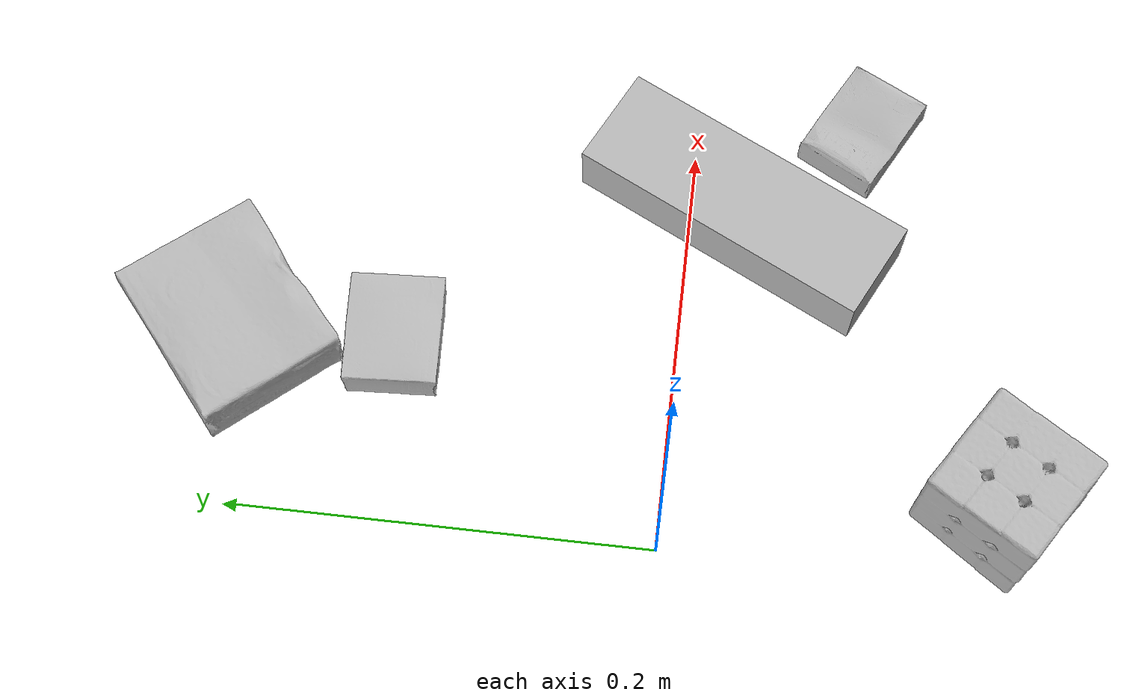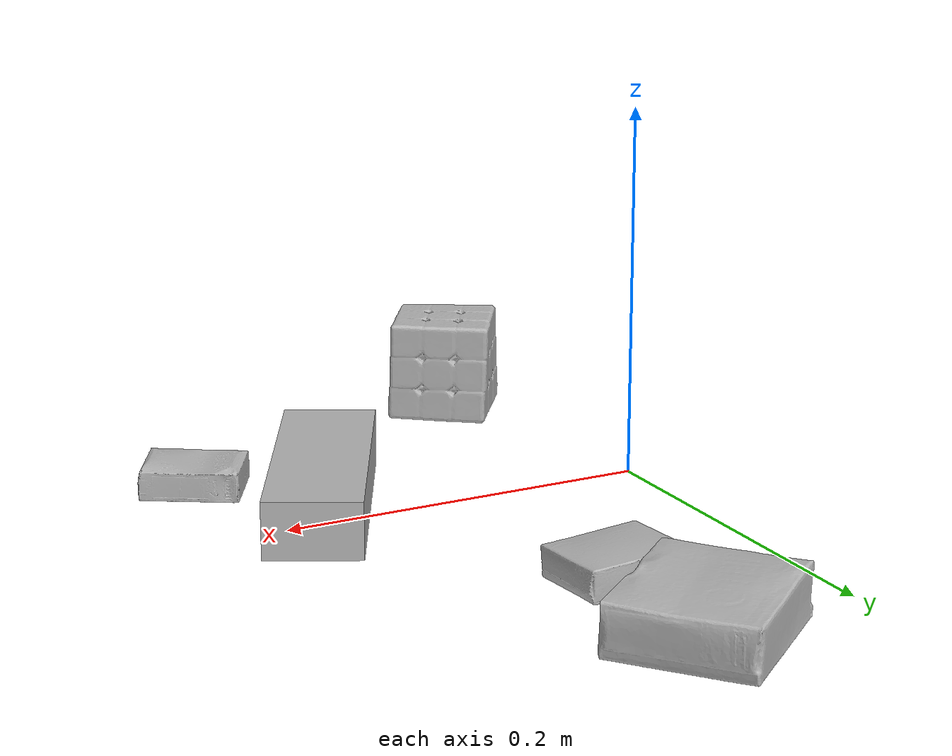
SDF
<sdf version="1.4">
  <world name="default">
    <light name="light1" type="point">
      <pose>0 0 1 0 0 0</pose>
      <diffuse>3 3 3 1</diffuse>
      <specular>3 3 3 1</specular>
    </light>
    <light name="light2" type="point">
      <pose>0 0.5 2 0 0 0</pose>
      <diffuse>1 1 1 1</diffuse>
      <specular>1 1 1 1</specular>
    </light>
    <light name="light3" type="point">
      <pose>0 0.5 2 0 0 0</pose>
      <diffuse>3 3 3 1</diffuse>
      <specular>3 3 3 1</specular>
    </light>
    <scene>
      <ambient>0.7 0.7 0.7</ambient>
    </scene>
    <model name="box1">
      <link name="link_box1">
        <collision name="default">
          <geometry>
            <mesh>
              <uri>model://jenga/collision_meshes/collision.obj</uri>
              <scale>1.0 1.0 1.0</scale>
            </mesh>
          </geometry>
          <surface>
            <friction>
              <ode>
                <mu>0.5</mu>
                <mu2>0.5</mu2>
              </ode>
            </friction>
          <contact>
        <ode>
            <max_vel>0</max_vel>
            <min_depth>0.0001</min_depth>
            <kp>1e8</kp>
        </ode>
    </contact></surface>
        </collision>
        <visual name="default">
          <geometry>
            <mesh>
              <uri>model://jenga/visual_meshes/visual.dae</uri>
              <scale>1.0 1.0 1.0</scale>
            </mesh>
          </geometry>
        </visual>
        <inertial>
          <mass>0.2062758058309555</mass>
          <pose>-2.502855807051674e-07 -0.00010250010382151231 -4.092339804628864e-05 0.0 -7.342154049184251e-07 0.0</pose>
          <inertia>
            <ixx>5.7081514e-05</ixx>
            <iyy>0.0003867828</iyy>
            <izz>0.00041292355</izz>
            <ixy>0</ixy>
            <ixz>0</ixz>
            <iyz>0</iyz>
          </inertia>
        </inertial>
      </link>
      <pose>0.17081525921821594 -0.023737499490380287 0.014999995939433575 1.2492917617102381e-08 -1.317518029696186e-09 -2.036909696625025</pose>
    </model>
    <model name="box2">
      <link name="link_box2">
        <collision name="default">
          <geometry>
            <mesh>
              <uri>model://cracker_box/collision_meshes/collision.obj</uri>
              <scale>0.25 0.25 0.25</scale>
            </mesh>
          </geometry>
          <surface>
            <friction>
              <ode>
                <mu>0.5</mu>
                <mu2>0.5</mu2>
              </ode>
            </friction>
          <contact>
        <ode>
            <max_vel>0</max_vel>
            <min_depth>0.0001</min_depth>
            <kp>1e8</kp>
        </ode>
    </contact></surface>
        </collision>
        <visual name="default">
          <geometry>
            <mesh>
              <uri>model://cracker_box/visual_meshes/visual.dae</uri>
              <scale>0.25 0.25 0.25</scale>
            </mesh>
          </geometry>
        </visual>
        <inertial>
          <mass>0.023937078192830086</mass>
          <pose>0.00023660386796109378 6.358562677633017e-05 -0.00042573839891701937 -0.00031620780222672953 -0.011106490531565828 0.0025467947702904154</pose>
          <inertia>
            <ixx>3.8053279e-06</ixx>
            <iyy>6.2833433e-06</iyy>
            <izz>8.966907e-06</izz>
            <ixy>0</ixy>
            <ixz>0</ixz>
            <iyz>0</iyz>
          </inertia>
        </inertial>
      </link>
      <pose>0.22057011723518372 -0.07963075488805771 0.009120448492467403 -0.011787978816900014 -0.007367190454648756 -0.5011123955179532</pose>
    </model>
    <model name="box3">
      <link name="link_box3">
        <collision name="default">
          <geometry>
            <mesh>
              <uri>model://pudding_box/collision_meshes/collision.obj</uri>
              <scale>0.5 0.5 0.5</scale>
            </mesh>
          </geometry>
          <surface>
            <friction>
              <ode>
                <mu>0.5</mu>
                <mu2>0.5</mu2>
              </ode>
            </friction>
          <contact>
        <ode>
            <max_vel>0</max_vel>
            <min_depth>0.0001</min_depth>
            <kp>1e8</kp>
        </ode>
    </contact></surface>
        </collision>
        <visual name="default">
          <geometry>
            <mesh>
              <uri>model://pudding_box/visual_meshes/visual.dae</uri>
              <scale>0.5 0.5 0.5</scale>
            </mesh>
          </geometry>
        </visual>
        <inertial>
          <mass>0.06577561050653458</mass>
          <pose>0.0002447410661261529 0.00040339428232982755 -0.00025944135268218815 0.005213102261421096 -0.006603797796883786 0.020079827023418362</pose>
          <inertia>
            <ixx>1.8588986e-05</ixx>
            <iyy>1.2506803e-05</iyy>
            <izz>2.7451497e-05</izz>
            <ixy>0</ixy>
            <ixz>0</ixz>
            <iyz>0</iyz>
          </inertia>
        </inertial>
      </link>
      <pose>0.08845990151166916 0.13245844841003418 0.009862901642918587 0.02234850798627105 -0.011391687178536116 1.6303167375246244</pose>
    </model>
    <model name="box4">
      <link name="link_box4">
        <collision name="default">
          <geometry>
            <mesh>
              <uri>model://gelatin_box/collision_meshes/collision.obj</uri>
              <scale>1.0 1.0 1.0</scale>
            </mesh>
          </geometry>
          <surface>
            <friction>
              <ode>
                <mu>0.5</mu>
                <mu2>0.5</mu2>
              </ode>
            </friction>
          <contact>
        <ode>
            <max_vel>0</max_vel>
            <min_depth>0.0001</min_depth>
            <kp>1e8</kp>
        </ode>
    </contact></surface>
        </collision>
        <visual name="default">
          <geometry>
            <mesh>
              <uri>model://gelatin_box/visual_meshes/visual.dae</uri>
              <scale>1.0 1.0 1.0</scale>
            </mesh>
          </geometry>
        </visual>
        <inertial>
          <mass>0.21051041781902313</mass>
          <pose>0.000431961816502735 0.00011156871914863586 -0.0003640321083366871 -0.0010503719683328595 -0.0047558182256164224 0.016440557608480007</pose>
          <inertia>
            <ixx>0.0001486032</ixx>
            <iyy>0.00010614647</iyy>
            <izz>0.00022620716</izz>
            <ixy>0</ixy>
            <ixz>0</ixz>
            <iyz>0</iyz>
          </inertia>
        </inertial>
      </link>
      <pose>0.08640999346971512 0.2093828022480011 0.015168309211730957 0.005597448915604604 -0.007304487984030702 -0.8947702810228432</pose>
    </model>
    <model name="box5">
      <link name="link_box5">
        <collision name="default">
          <geometry>
            <mesh>
              <uri>model://rubiks_cube/collision_meshes/collision.obj</uri>
              <scale>1.0 1.0 1.0</scale>
            </mesh>
          </geometry>
          <surface>
            <friction>
              <ode>
                <mu>0.5</mu>
                <mu2>0.5</mu2>
              </ode>
            </friction>
          <contact>
        <ode>
            <max_vel>0</max_vel>
            <min_depth>0.0001</min_depth>
            <kp>1e8</kp>
        </ode>
    </contact></surface>
        </collision>
        <visual name="default">
          <geometry>
            <mesh>
              <uri>model://rubiks_cube/visual_meshes/visual.dae</uri>
              <scale>1.0 1.0 1.0</scale>
            </mesh>
          </geometry>
        </visual>
        <inertial>
          <mass>0.13810032606124878</mass>
          <pose>2.6721041649580002e-05 5.256967051536776e-05 -7.264316082000732e-06 -0.05467240103362065 -0.09813937396878175 -0.03445717948301123</pose>
          <inertia>
            <ixx>7.63097e-05</ixx>
            <iyy>7.595384e-05</iyy>
            <izz>7.694205e-05</izz>
            <ixy>0</ixy>
            <ixz>0</ixz>
            <iyz>0</iyz>
          </inertia>
        </inertial>
      </link>
      <pose>0.03663312643766403 -0.15199235081672668 0.028679000213742256 5.007900588417126e-08 1.5269997482692557e-08 -2.150143361559148</pose>
    </model>
  <physics type="ode">
      <max_contacts>50</max_contacts>
      <ode>
        <solver>
          <type>quick</type>
          <iters>75</iters>
        </solver>
        <constraints>
          <contact_max_correcting_vel>0</contact_max_correcting_vel>
          <contact_surface_layer>0</contact_surface_layer>
        </constraints>
      </ode>
    </physics></world>
</sdf>
